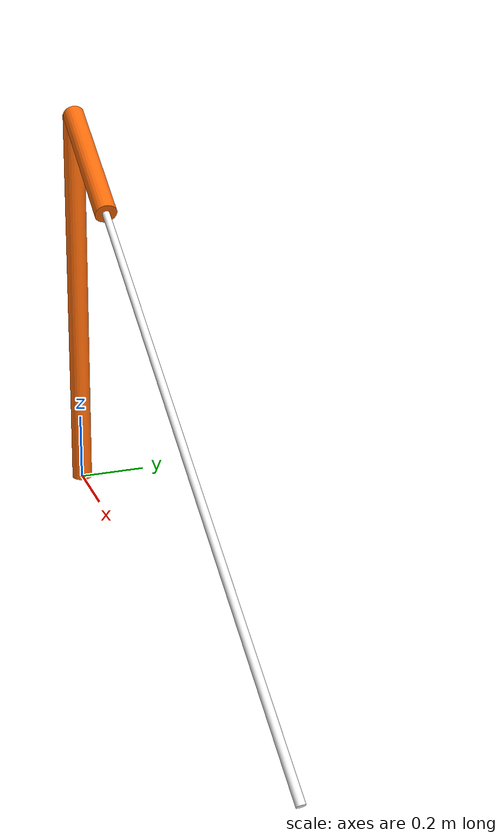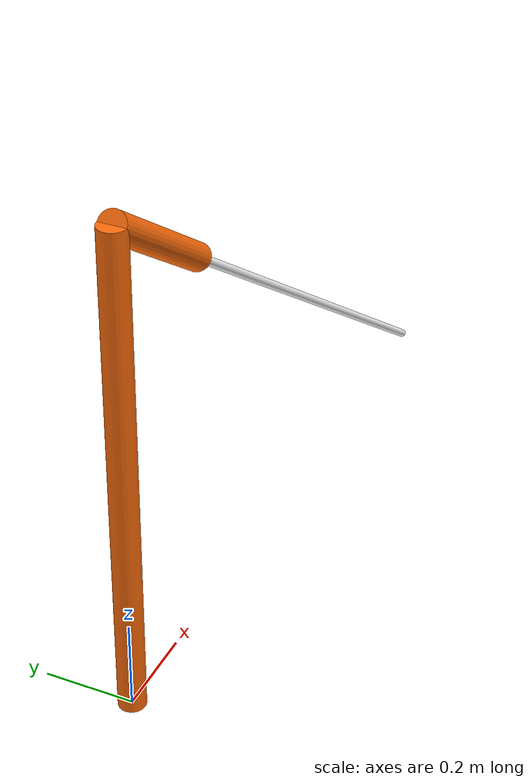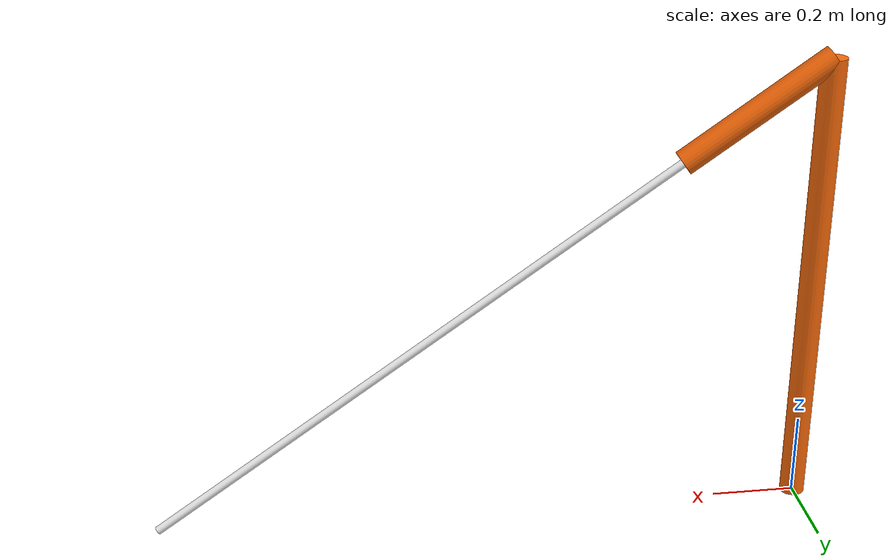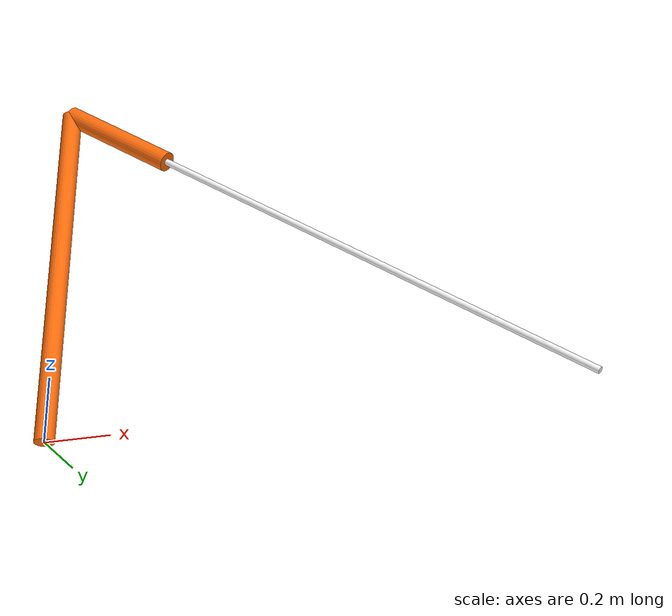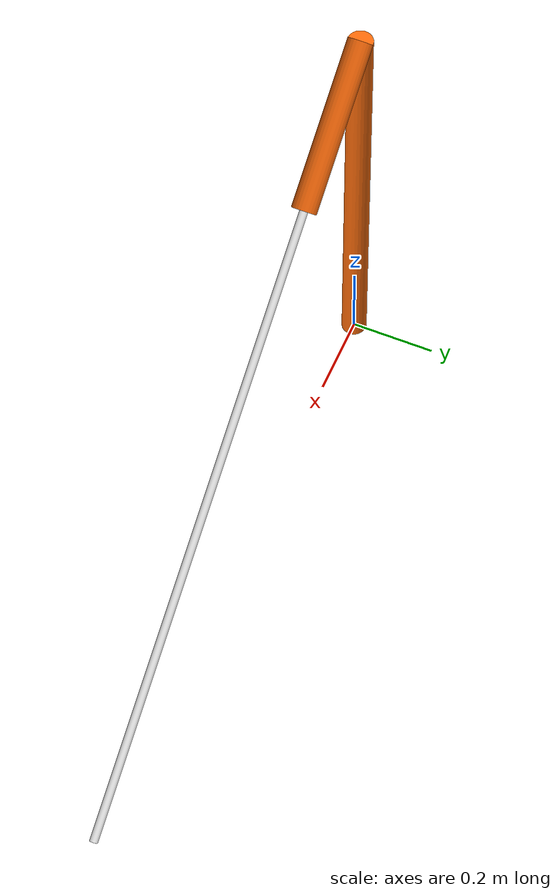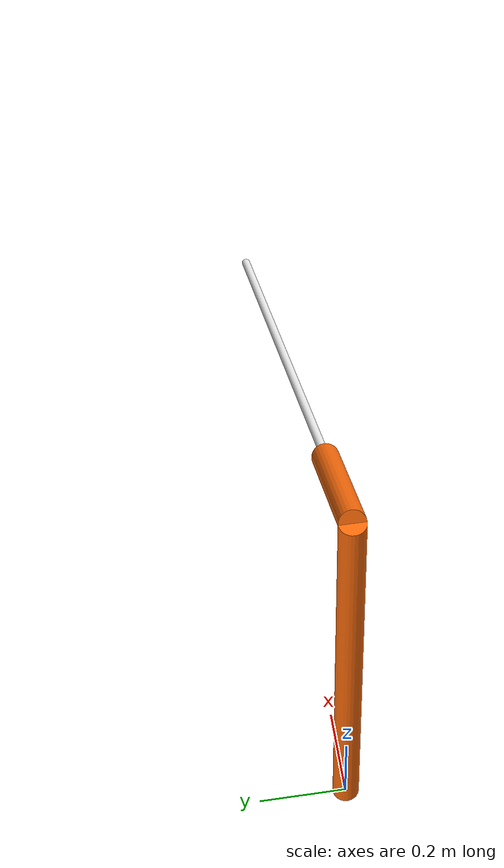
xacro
<?xml version="1.0" ?>
<robot name="cane" xmlns:xacro="http://www.ros.org/wiki/xacro">

  <xacro:property name="PI" value="3.1415926535897931"/>
  <xacro:property name="radius" value="0.01"/>
  <xacro:property name="offset" value="0.01"/>
  <xacro:property name="root2" value="1.41421356237"/>
  <xacro:property name="pole_len" value="1.5"/>
  <xacro:property name="pole_mass" value="0.1"/>
  <xacro:property name="arm_len" value="0.4"/>
  <xacro:property name="arm_deg" value="55"/>
  <xacro:property name="pole_offset" value="0.02"/>
  <xacro:property name="arm_radius" value="0.03"/>
  <xacro:property name="sensor_location" value="0.375"/>
  <xacro:property name="sensor_scan_vert_angle" value="30"/>
  <xacro:property name="sensor_scan_horiz_angle" value="30"/>
  <xacro:property name="sensor_fov_angle" value="30"/>
  <xacro:property name="sensor_cane_angle" value="30"/>

  <xacro:property name="arm_rad" value="${arm_deg * PI/180}"/>
  <xacro:property name="sensor_scan_vert_rad" value="${sensor_scan_vert_angle * PI/180}"/>
  <xacro:property name="sensor_scan_horiz_rad" value="${sensor_scan_horiz_angle * PI/180}"/>
  <xacro:property name="sensor_fov_rad" value="${sensor_fov_angle * PI/180}"/>
  <xacro:property name="sensor_cane_rad" value="${(90 - sensor_cane_angle) * PI/180}"/>
  <xacro:property name="base_height" value="${((pole_len + arm_len) * cos(arm_rad)) + pole_offset}"/>

  <xacro:include filename="$(find cane_description)/urdf/materials.xacro" />
  <xacro:include filename="$(find cane_description)/urdf/cane.gazebo" />

  <link name="world" />

  <link name="arm_base" >
    <inertial>
      <mass value="0.001"/>
      <origin xyz="0 0 ${base_height/2}" rpy="0 0 0"/>
      <inertia ixx="1" ixy="0" ixz="0" iyy="1" iyz="0" izz="1"/>
    </inertial>

    <visual>
      <origin xyz="0 0 ${base_height/2}" rpy="0 0 0"/>
      <geometry>
        <cylinder length="${base_height}" radius="${arm_radius}"/>
      </geometry>
      <material name="orange"/>
    </visual>
  </link>

  <link name="shoulder"/>

  <link name="arm" >
    <inertial>
      <mass value="0.001"/>
      <origin xyz="0 0 ${-arm_len/2}" rpy="0 0 0"/>
      <inertia ixx="1" ixy="0" ixz="0" iyy="1" iyz="0" izz="1"/>
    </inertial>

    <visual>
      <origin xyz="0 0 ${-arm_len/2}" rpy="0 0 0"/>
      <geometry>
        <cylinder length="${arm_len}" radius="${arm_radius}"/>
      </geometry>
      <material name="orange"/>
    </visual>
  </link>

  <link name="pole">
    <inertial>
      <mass value="${pole_mass}"/>
      <origin xyz="0 0 ${-pole_len/2}" rpy="0 0 0"/>
      <inertia ixx="1" ixy="0" ixz="0" iyy="1" iyz="0" izz="1"/>
    </inertial>

    <collision>
      <origin xyz="0 0 ${-pole_len/2}" rpy="0 0 0"/>
      <geometry>
        <cylinder length="${pole_len}" radius="${radius}"/>
      </geometry>
    </collision>

    <visual>
      <origin xyz="0 0 ${-pole_len/2}" rpy="0 0 0"/>
      <geometry>
        <cylinder length="${pole_len}" radius="${radius}"/>
      </geometry>
      <material name="white"/>
    </visual>
  </link>

  <link name="imu_module"/>

  <link name="sensor_module"/>

  <joint name="fixed" type="fixed">
    <parent link="world"/>
    <child link="arm_base"/>
    <origin xyz="0 0 0" rpy="0 0 0"/>
  </joint>

  <joint name="shoulder_joint" type="continuous">
    <parent link="arm_base"/>
    <child link="shoulder"/>
    <origin xyz="0 0 ${base_height}" rpy="0 0 0"/>
    <axis xyz="0 0 1"/>
    <dynamics damping="0.7"/>
    <limit effort="100" velocity="100"/>
    <joint_properties damping="0.0" friction="0.0"/>
  </joint>

  <joint name="arm_joint" type="fixed">
    <parent link="shoulder"/>
    <child link="arm"/>
    <origin xyz="0 0 0" rpy="0 ${-arm_rad} 0"/>
  </joint>

  <joint name="hand_joint" type="fixed">
    <parent link="arm"/>
    <child link="pole"/>
    <origin xyz="0 0 ${-arm_len}" rpy="0 0 0"/>
  </joint>

  <joint name="sensor_joint" type="fixed">
    <parent link="pole"/>
    <child link="sensor_module"/>
    <origin xyz="${radius + offset} 0 ${-sensor_location}" rpy="0 ${sensor_cane_rad} 0" />
  </joint>

  <joint name="imu_joint" type="fixed">
    <parent link="pole"/>
    <child link="imu_module"/>
    <origin xyz="${radius + offset} 0 ${-sensor_location}" rpy="0 ${sensor_cane_rad} 0" />
  </joint>

  <transmission name="cane_joint_trans">
    <type>transmission_interface/SimpleTransmission</type>
    <joint name="shoulder_joint">
      <hardwareInterface>hardware_interface/EffortJointInterface</hardwareInterface>
    </joint>
    <actuator name="cane_joint_motor">
      <hardwareInterface>hardware_interface/EffortJointInterface</hardwareInterface>
      <mechanicalReduction>1</mechanicalReduction>
    </actuator>
  </transmission>

  <gazebo reference="imu_module">
    <gravity>true</gravity>
    <sensor name="imu_sensor" type="imu">
      <always_on>true</always_on>
      <update_rate>100.0</update_rate>
      <visualize>true</visualize>
      <topic>__default_topic__</topic>
      <plugin filename="libgazebo_ros_imu_sensor.so" name="imu_plugin">
        <topicName>/cane/imu</topicName>
        <bodyName>imu_module</bodyName>
        <updateRateHZ>100.0</updateRateHZ>
        <gaussianNoise>0.0</gaussianNoise>
        <xyzOffset>0 0 0</xyzOffset>
        <rpyOffset>0 0 0</rpyOffset>
        <frameName>imu_module</frameName>
        <initialOrientationAsReference>false</initialOrientationAsReference>
      </plugin>
      <pose>0 0 0 0 0 0</pose>
    </sensor>
  </gazebo>

  <gazebo reference="sensor_module">
    <sensor type="ray" name="ultrasonic_ray">
      <pose>0 0 0 0 0 0</pose>
      <visualize>true</visualize>
      <ray>
        <scan>
          <horizontal>
            <samples>15</samples>
            <resolution>1.0</resolution>
            <min_angle>-${sensor_scan_horiz_rad/2}</min_angle>
            <max_angle>${sensor_scan_horiz_rad/2}</max_angle>
          </horizontal>
          <vertical>
            <samples>25</samples>
            <resolution>1.0</resolution>
            <min_angle>-${sensor_scan_vert_rad/2}</min_angle>
            <max_angle>${sensor_scan_vert_rad/2}</max_angle>
          </vertical>
        </scan>
        <range>
          <min>0.1</min>
          <max>3</max>
          <resolution>0.01</resolution>
        </range>
      </ray>
      <plugin name="gazebo_ros_range" filename="libgazebo_ros_range.so">
        <gaussianNoise>0.005</gaussianNoise>
        <alwaysOn>true</alwaysOn>
        <updateRate>100</updateRate>
        <topicName>/cane/sensor</topicName>
        <frameName>/sensor_module</frameName>
        <fov>${sensor_fov_rad}</fov>
        <radiation>ultrasound</radiation>
      </plugin>
    </sensor>
  </gazebo>
</robot>

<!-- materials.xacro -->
<robot>

  <material name="black">
    <color rgba="0.0 0.0 0.0 1.0"/>
  </material>

  <material name="blue">
    <color rgba="0.0 0.0 0.8 1.0"/>
  </material>

  <material name="green">
    <color rgba="0.0 0.8 0.0 1.0"/>
  </material>

  <material name="grey">
    <color rgba="0.2 0.2 0.2 1.0"/>
  </material>

  <material name="orange">
    <color rgba="${255/255} ${108/255} ${10/255} 1.0"/>
  </material>

  <material name="brown">
    <color rgba="${222/255} ${207/255} ${195/255} 1.0"/>
  </material>

  <material name="red">
    <color rgba="0.8 0.0 0.0 1.0"/>
  </material>

  <material name="white">
    <color rgba="1.0 1.0 1.0 1.0"/>
  </material>

</robot>
